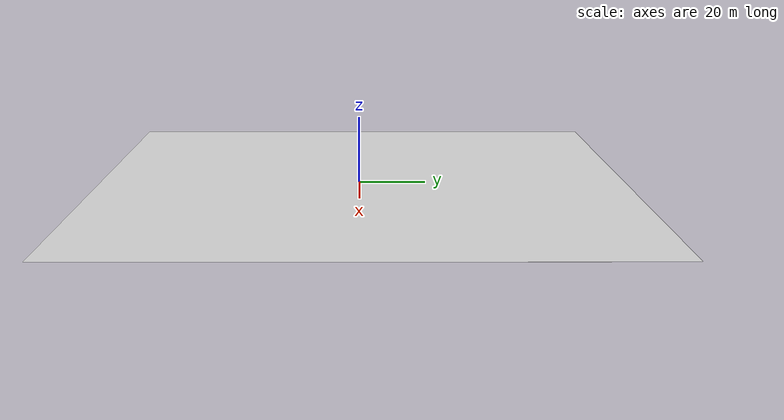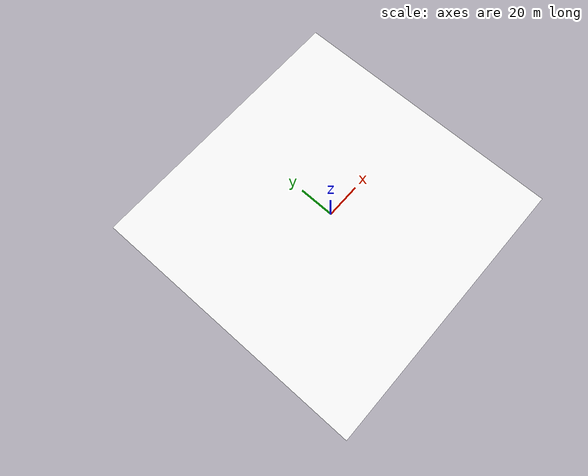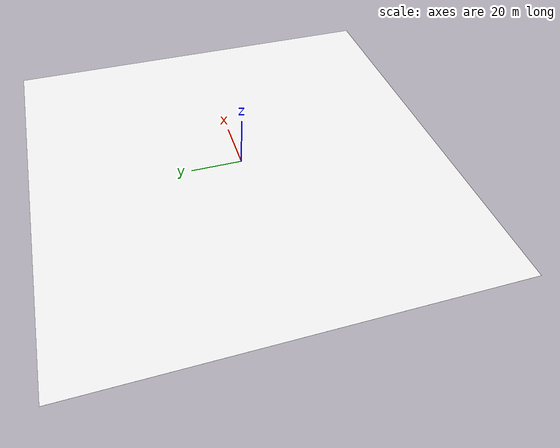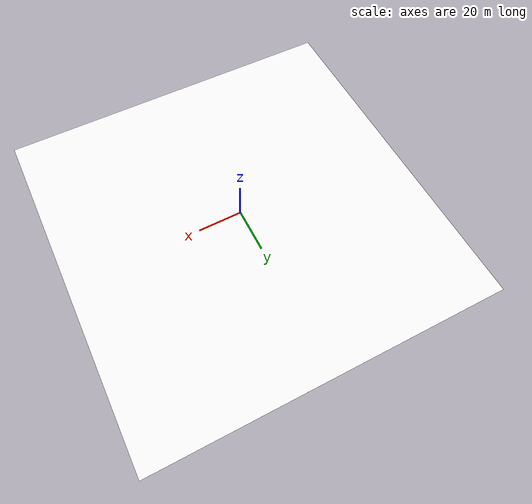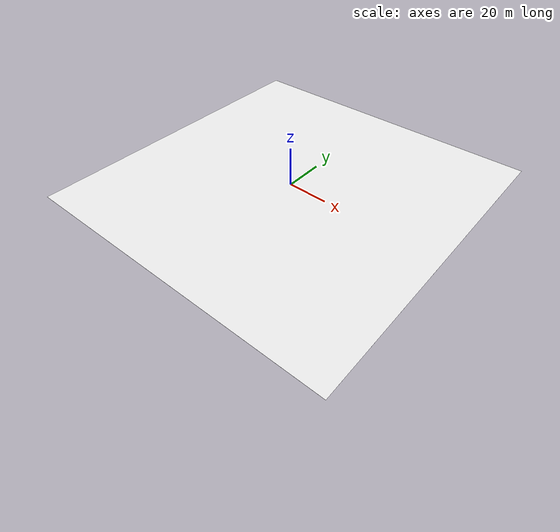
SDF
<?xml version='1.0'?>
<sdf version='1.7'>
  <model name='Desert_Pattern'>

    <include>
      <uri>model://Ground_Base_Model</uri>
    </include>

    <link name='Ground_Pattern'>
      <pose>0 1 0 0 0 0</pose>
      <visual name='Pattern_Visual'>
        <cast_shadows>0</cast_shadows>
        <pose>0 0 0 0 0 0</pose>
        <geometry>
          <box>
            <size>160 160 0.01</size>
          </box>
        </geometry>
	    <material>
	    <pbr>
		<metal>
		<albedo_map>model://Configs/Desert_Pattern/Ground_Texture/Images/desert_sand.jpg</albedo_map>
		</metal>
	    </pbr>
	    <ambient>1 1 1 1</ambient>
	    <diffuse>1 1 1 1</diffuse>
	    <specular>0.5 0.5 0.5 1</specular>
	    </material>
<!--Added from DH-->
      </visual>
      <collision name='Surface_Collision'>
        <max_contacts>10</max_contacts>
        <pose>0 0 0 0 0 0</pose>
        <geometry>
          <box>
            <size>40 40 0.01</size>
          </box>
        </geometry>
      </collision>
    </link>
    <static>1</static>
  <allow_auto_disable>1</allow_auto_disable>
  </model>
</sdf>

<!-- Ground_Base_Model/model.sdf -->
<sdf version='1.7'>
  <model name='Ground_Base_Model'>
    <static>0</static>
    <link name='Ground_Link'>
      <pose>0 0 0 0 3.14 0</pose>
      <inertial>
        <mass>1000</mass>
        <pose>0 0 0 0 0 0</pose>
        <inertia>
          <ixx>500</ixx>
          <ixy>0</ixy>
          <ixz>0</ixz>
          <iyy>500</iyy>
          <iyz>0</iyz>
          <izz>1000</izz>
        </inertia>
      </inertial>
      <self_collide>0</self_collide>
      <enable_wind>0</enable_wind>
      <kinematic>0</kinematic>
      <gravity>0</gravity>

    </link>

    <allow_auto_disable>0</allow_auto_disable>
  </model>
</sdf>
